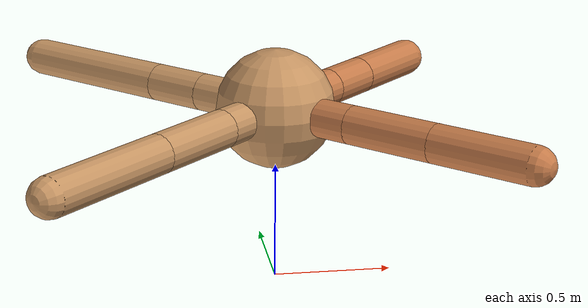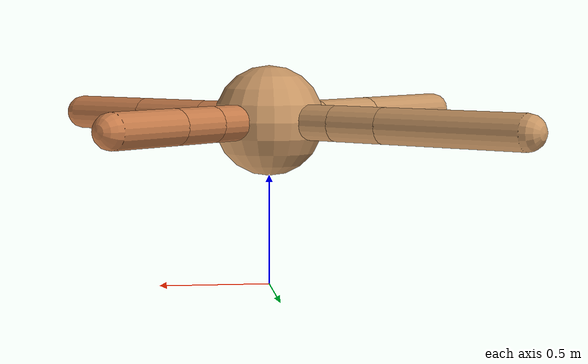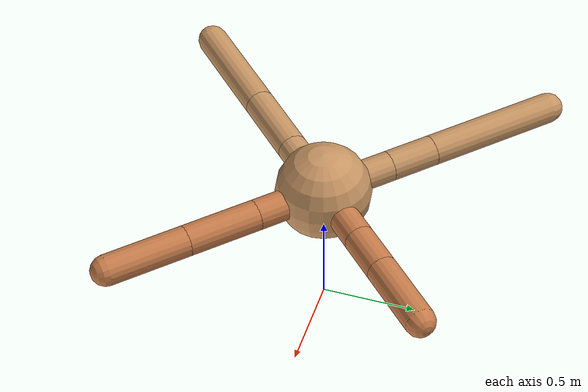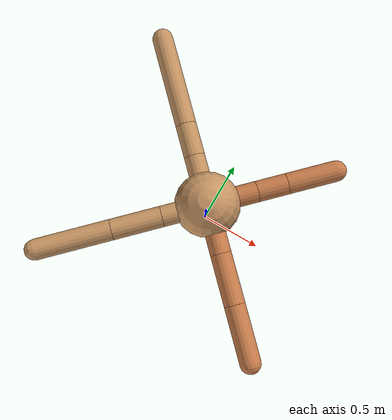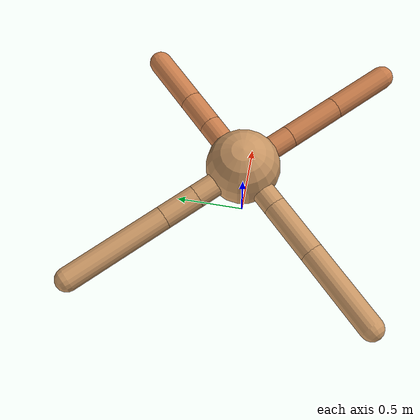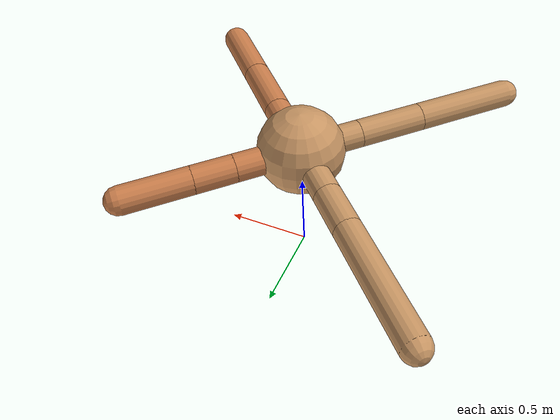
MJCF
<mujoco model="ant">
  <compiler angle="degree" coordinate="local" inertiafromgeom="true" />
  <option integrator="RK4" timestep="0.01" />
  <custom>
    <numeric data="0.0 0.0 0.55 1.0 0.0 0.0 0.0 0.0 1.0 0.0 -1.0 0.0 -1.0 0.0 1.0" name="init_qpos" />
  </custom>
  <default>
    <joint armature="1" damping="1" limited="true" />
    <geom conaffinity="0" condim="3" density="5.0" friction="1.5 0.1 0.1" margin="0.01" rgba="0.8 0.6 0.4 1" />
  </default>
  <worldbody>
    <body name="torso" pos="0 0 0.75">
      <geom name="torso_geom" pos="0 0 0" size="0.25" type="sphere" />

      <body name="front_left_leg" pos="0 0 0">
        <geom fromto="0.0 0.0 0.0 0.27269934210744523 0.27269934210744523 0.0" name="aux_1_geom" size="0.08" type="capsule" rgba=".8 .5 .3 1" />
        <body name="aux_1" pos="0.27269934210744523 0.27269934210744523 0.0">
          <joint axis="0 0 1" name="hip_1" pos="0.0 0.0 0.0" range="-40 40" type="hinge" />
          <geom fromto="0.0 0.0 0.0 0.16501123867035422 0.16501123867035422 0.0" name="left_leg_geom" size="0.08" type="capsule" rgba=".8 .5 .3 1" />
          <body pos="0.16501123867035422 0.16501123867035422 0.0" name="front_left_foot">
            <joint axis="-1 1 0" name="ankle_1" pos="0.0 0.0 0.0" range="30 100" type="hinge" />
            <geom fromto="0.0 0.0 0.0 0.2726820236730941 0.2726820236730941 0.0" name="left_ankle_geom" size="0.08" type="capsule" rgba=".8 .5 .3 1" />
          </body>
        </body>
      </body>
      <body name="front_right_leg" pos="0 0 0">
        <geom fromto="0.0 0.0 0.0 -0.26921577608564035 0.26921577608564035 0.0" name="aux_2_geom" size="0.08" type="capsule" />
        <body name="aux_2" pos="-0.26921577608564035 0.26921577608564035 0.0">
          <joint axis="0 0 1" name="hip_2" pos="0.0 0.0 0.0" range="-40 40" type="hinge" />
          <geom fromto="0.0 0.0 0.0 -0.178917998624274 0.178917998624274 0.0" name="right_leg_geom" size="0.08" type="capsule" />
          <body pos="-0.178917998624274 0.178917998624274 0.0" name="front_right_foot">
            <joint axis="1 1 0" name="ankle_2" pos="0.0 0.0 0.0" range="-100 -30" type="hinge" />
            <geom fromto="0.0 0.0 0.0 -0.5009137100046399 0.5009137100046399 0.0" name="right_ankle_geom" size="0.08" type="capsule" />
          </body>
        </body>
      </body>
      <body name="left_back_leg" pos="0 0 0">
        <geom fromto="0.0 0.0 0.0 -0.24943487426389432 -0.24943487426389432 0.0" name="aux_3_geom" size="0.08" type="capsule" />
        <body name="aux_3" pos="-0.24943487426389432 -0.24943487426389432 0.0">
          <joint axis="0 0 1" name="hip_3" pos="0.0 0.0 0.0" range="-40 40" type="hinge" />
          <geom fromto="0.0 0.0 0.0 -0.27364405738435954 -0.27364405738435954 0.0" name="back_leg_geom" size="0.08" type="capsule" />
          <body pos="-0.27364405738435954 -0.27364405738435954 0.0" name="left_back_foot">
            <joint axis="-1 1 0" name="ankle_3" pos="0.0 0.0 0.0" range="-100 -30" type="hinge" />
            <geom fromto="0.0 0.0 0.0 -0.4155491769350299 -0.4155491769350299 0.0" name="third_ankle_geom" size="0.08" type="capsule" />
          </body>
        </body>
      </body>
      <body name="right_back_leg" pos="0 0 0">
        <geom fromto="0.0 0.0 0.0 0.2707048696995894 -0.2707048696995894 0.0" name="aux_4_geom" size="0.08" type="capsule" rgba=".8 .5 .3 1" />
        <body name="aux_4" pos="0.2707048696995894 -0.2707048696995894 0.0">
          <joint axis="0 0 1" name="hip_4" pos="0.0 0.0 0.0" range="-40 40" type="hinge" />
          <geom fromto="0.0 0.0 0.0 0.2736490730546826 -0.2736490730546826 0.0" name="rightback_leg_geom" size="0.08" type="capsule" rgba=".8 .5 .3 1" />
          <body pos="0.2736490730546826 -0.2736490730546826 0.0" name="right_back_foot">
            <joint axis="1 1 0" name="ankle_4" pos="0.0 0.0 0.0" range="30 100" type="hinge" />
            <geom fromto="0.0 0.0 0.0 0.3061506188995113 -0.3061506188995113 0.0" name="fourth_ankle_geom" size="0.08" type="capsule" rgba=".8 .5 .3 1" />
          </body>
        </body>
      </body>
    </body>
  </worldbody>
  <actuator>
    <motor ctrllimited="true" ctrlrange="-1.0 1.0" joint="hip_4" gear="150" />
    <motor ctrllimited="true" ctrlrange="-1.0 1.0" joint="ankle_4" gear="150" />
    <motor ctrllimited="true" ctrlrange="-1.0 1.0" joint="hip_1" gear="150" />
    <motor ctrllimited="true" ctrlrange="-1.0 1.0" joint="ankle_1" gear="150" />
    <motor ctrllimited="true" ctrlrange="-1.0 1.0" joint="hip_2" gear="150" />
    <motor ctrllimited="true" ctrlrange="-1.0 1.0" joint="ankle_2" gear="150" />
    <motor ctrllimited="true" ctrlrange="-1.0 1.0" joint="hip_3" gear="150" />
    <motor ctrllimited="true" ctrlrange="-1.0 1.0" joint="ankle_3" gear="150" />
  </actuator>
</mujoco>
